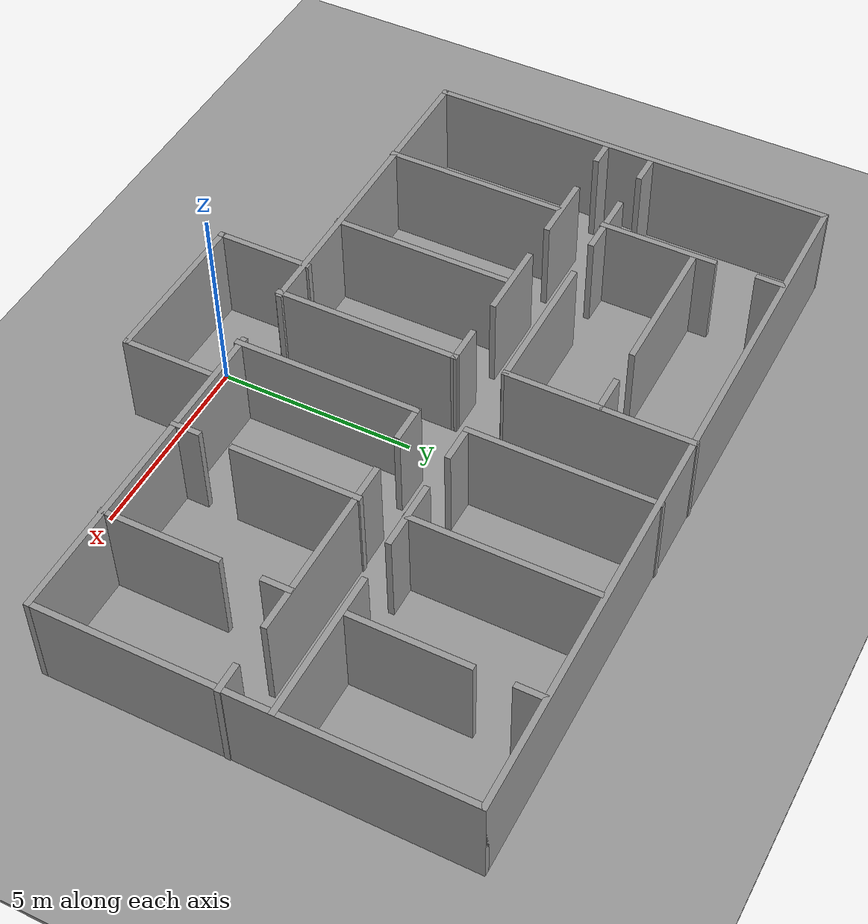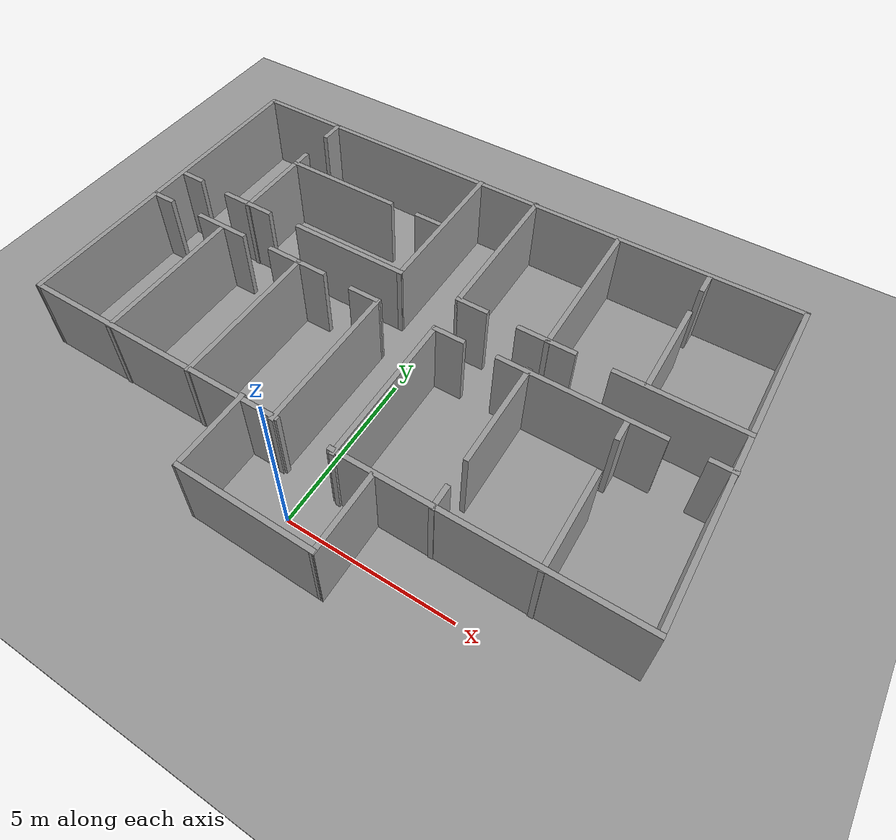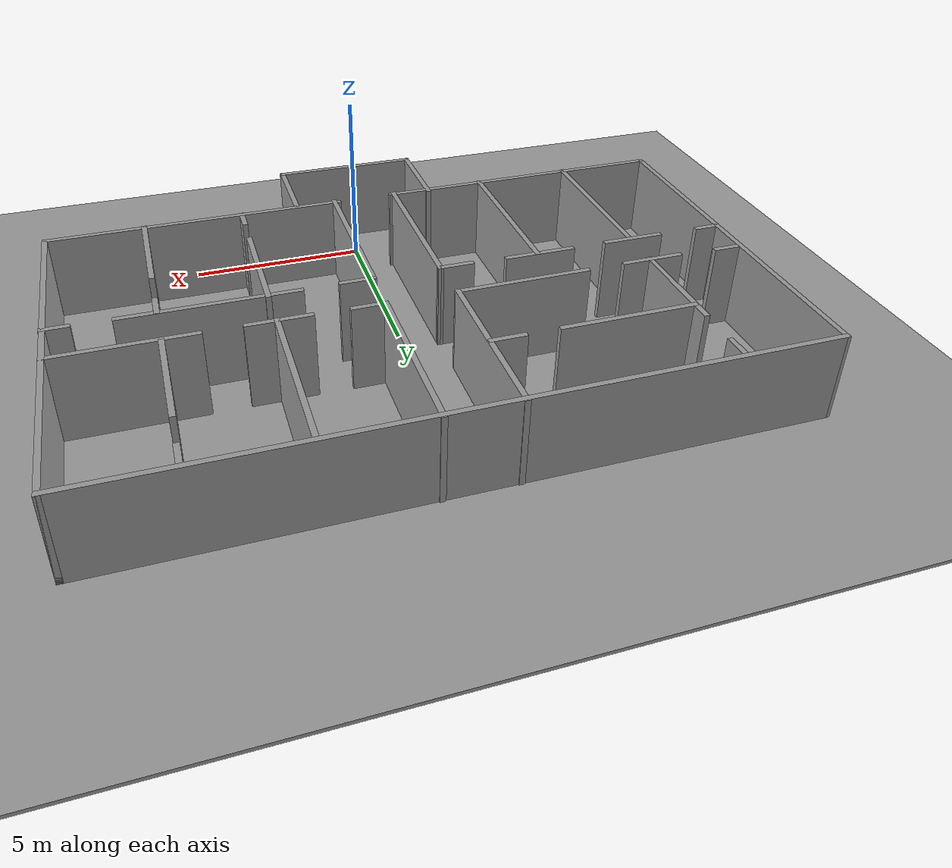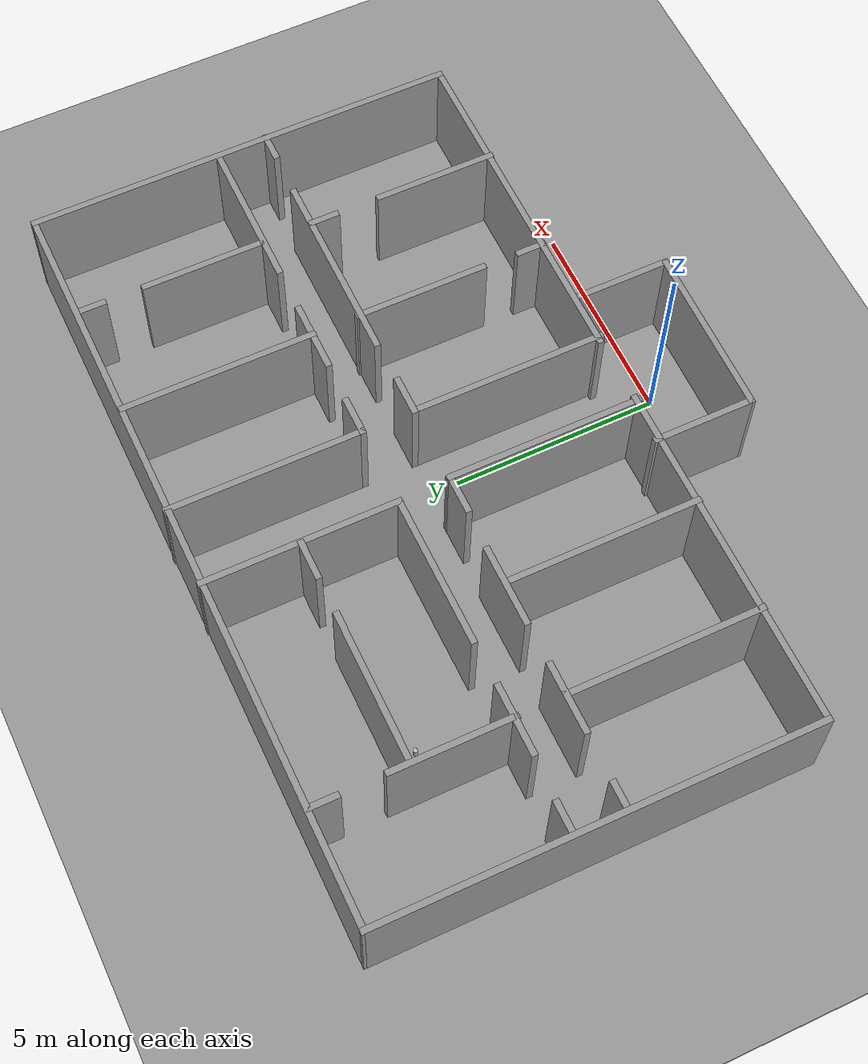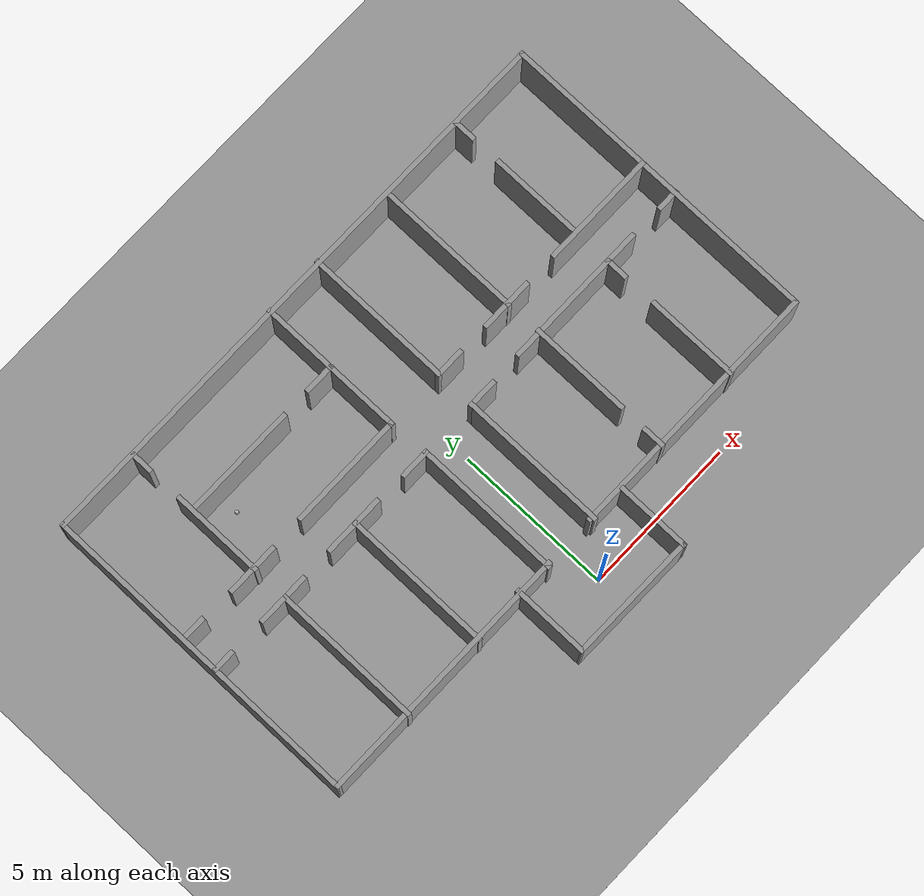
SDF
<sdf version="1.7">
 <world name="default">
  <light name="sun" type="directional">
   <pose>0 0 10 0 -0 0</pose>
   <diffuse>0.8 0.8 0.8 1</diffuse>
   <specular>0.2 0.2 0.2 1</specular>
   <attenuation>
    <range>1000</range>
    <constant>0.9</constant>
    <linear>0.01</linear>
    <quadratic>0.001</quadratic>
   </attenuation>
   <direction>-0.5 0.1 -0.9</direction>
   <spot><inner_angle>0</inner_angle><outer_angle>0</outer_angle><falloff>0</falloff></spot>
  </light>
  <model name="ground_plane">
   <static>1</static>
   <link name="link">
    <collision name="collision">
     <geometry><plane><normal>0 0 1</normal><size>100 100</size></plane></geometry>
     <surface>
      <contact><collide_bitmask>65535</collide_bitmask></contact>
      <friction><ode><mu>100</mu><mu2>50</mu2></ode></friction>
     </surface>
    </collision>
    <visual name="visual">
     <cast_shadows>0</cast_shadows>
     <geometry><plane><normal>0 0 1</normal><size>100 100</size></plane></geometry>
     <material>
      <script><uri>file://media/materials/scripts/gazebo.material</uri><name>Gazebo/Grey</name></script>
     </material>
    </visual>
   </link>
  </model>
  <gravity>0 0 -9.8</gravity>
  <magnetic_field>6e-06 2.3e-05 -4.2e-05</magnetic_field>
  <atmosphere type="adiabatic"/>
  <physics type="ode">
   <max_step_size>0.001</max_step_size>
   <real_time_factor>1</real_time_factor>
   <real_time_update_rate>1000</real_time_update_rate>
  </physics>
  <scene><ambient>0.4 0.4 0.4 1</ambient><background>0.7 0.7 0.7 1</background><shadows>1</shadows></scene>
  <spherical_coordinates>
   <surface_model>EARTH_WGS84</surface_model>
   <latitude_deg>0</latitude_deg>
   <longitude_deg>0</longitude_deg>
   <elevation>0</elevation>
   <heading_deg>0</heading_deg>
  </spherical_coordinates>
  <model name="wh">
   <pose>-0.081529 5.18809 0 0 -0 0</pose>
   <link name="Wall_0">
    <collision name="Wall_0_Collision">
     <geometry><box><size>18.5 0.15 2.5</size></box></geometry>
     <pose>0 0 1.25 0 -0 0</pose>
    </collision>
    <visual name="Wall_0_Visual">
     <pose>0 0 1.25 0 -0 0</pose>
     <geometry><box><size>18.5 0.15 2.5</size></box></geometry>
     <material>
      <script><uri>file://media/materials/scripts/gazebo.material</uri><name>Gazebo/Grey</name></script>
      <ambient>1 1 1 1</ambient>
     </material>
     <meta><layer>0</layer></meta>
    </visual>
    <pose>0.000563 6.32698 0 0 -0 0</pose>
   </link>
   <link name="Wall_1">
    <collision name="Wall_1_Collision">
     <geometry><box><size>10.5 0.15 2.5</size></box></geometry>
     <pose>0 0 1.25 0 -0 0</pose>
    </collision>
    <visual name="Wall_1_Visual">
     <pose>0 0 1.25 0 -0 0</pose>
     <geometry><box><size>10.5 0.15 2.5</size></box></geometry>
     <material>
      <script><uri>file://media/materials/scripts/gazebo.material</uri><name>Gazebo/Grey</name></script>
      <ambient>1 1 1 1</ambient>
     </material>
     <meta><layer>0</layer></meta>
    </visual>
    <pose>9.17556 1.15198 0 0 -0 -1.5708</pose>
   </link>
   <link name="Wall_14">
    <collision name="Wall_14_Collision">
     <geometry><box><size>1.01604 0.15 2.5</size></box></geometry>
     <pose>0 0 1.25 0 -0 0</pose>
    </collision>
    <visual name="Wall_14_Visual">
     <pose>0 0 1.25 0 -0 0</pose>
     <geometry><box><size>1.01604 0.15 2.5</size></box></geometry>
     <material>
      <script><uri>file://media/materials/scripts/gazebo.material</uri><name>Gazebo/Grey</name></script>
      <ambient>1 1 1 1</ambient>
     </material>
     <meta><layer>0</layer></meta>
    </visual>
    <pose>-1.33164 0.512268 0 0 -0 -3.13943</pose>
   </link>
   <link name="Wall_16">
    <collision name="Wall_16_Collision">
     <geometry><box><size>2 0.15 2.5</size></box></geometry>
     <pose>0 0 1.25 0 -0 0</pose>
    </collision>
    <visual name="Wall_16_Visual">
     <pose>0 0 1.25 0 -0 0</pose>
     <geometry><box><size>2 0.15 2.5</size></box></geometry>
     <material>
      <script><uri>file://media/materials/scripts/gazebo.material</uri><name>Gazebo/Grey</name></script>
      <ambient>1 1 1 1</ambient>
     </material>
     <meta><layer>0</layer></meta>
    </visual>
    <pose>-3.73243 0.555226 0 0 -0 3.14159</pose>
   </link>
   <link name="Wall_18">
    <collision name="Wall_18_Collision">
     <geometry><box><size>1.75 0.15 2.5</size></box></geometry>
     <pose>0 0 1.25 0 -0 0</pose>
    </collision>
    <visual name="Wall_18_Visual">
     <pose>0 0 1.25 0 -0 0</pose>
     <geometry><box><size>1.75 0.15 2.5</size></box></geometry>
     <material>
      <script><uri>file://media/materials/scripts/gazebo.material</uri><name>Gazebo/Grey</name></script>
      <ambient>1 1 1 1</ambient>
     </material>
     <meta><layer>0</layer></meta>
    </visual>
    <pose>-6.52726 0.5435 0 0 -0 3.14159</pose>
   </link>
   <link name="Wall_20">
    <collision name="Wall_20_Collision">
     <geometry><box><size>0.75 0.15 2.5</size></box></geometry>
     <pose>0 0 1.25 0 -0 0</pose>
    </collision>
    <visual name="Wall_20_Visual">
     <pose>0 0 1.25 0 -0 0</pose>
     <geometry><box><size>0.75 0.15 2.5</size></box></geometry>
     <material>
      <script><uri>file://media/materials/scripts/gazebo.material</uri><name>Gazebo/Grey</name></script>
      <ambient>1 1 1 1</ambient>
     </material>
     <meta><layer>0</layer></meta>
    </visual>
    <pose>-8.85525 0.555226 0 0 -0 3.14159</pose>
   </link>
   <link name="Wall_22">
    <collision name="Wall_22_Collision">
     <geometry><box><size>4.75 0.15 2.5</size></box></geometry>
     <pose>0 0 1.25 0 -0 0</pose>
    </collision>
    <visual name="Wall_22_Visual">
     <pose>0 0 1.25 0 -0 0</pose>
     <geometry><box><size>4.75 0.15 2.5</size></box></geometry>
     <material>
      <script><uri>file://media/materials/scripts/gazebo.material</uri><name>Gazebo/Grey</name></script>
      <ambient>1 1 1 1</ambient>
     </material>
     <meta><layer>0</layer></meta>
    </visual>
    <pose>-6.45314 -1.75978 0 0 -0 -1.5708</pose>
   </link>
   <link name="Wall_24">
    <collision name="Wall_24_Collision">
     <geometry><box><size>4.75 0.15 2.5</size></box></geometry>
     <pose>0 0 1.25 0 -0 0</pose>
    </collision>
    <visual name="Wall_24_Visual">
     <pose>0 0 1.25 0 -0 0</pose>
     <geometry><box><size>4.75 0.15 2.5</size></box></geometry>
     <material>
      <script><uri>file://media/materials/scripts/gazebo.material</uri><name>Gazebo/Grey</name></script>
      <ambient>1 1 1 1</ambient>
     </material>
     <meta><layer>0</layer></meta>
    </visual>
    <pose>-3.65318 -1.75978 0 0 -0 -1.5708</pose>
   </link>
   <link name="Wall_26">
    <collision name="Wall_26_Collision">
     <geometry><box><size>0.75 0.15 2.5</size></box></geometry>
     <pose>0 0 1.25 0 -0 0</pose>
    </collision>
    <visual name="Wall_26_Visual">
     <pose>0 0 1.25 0 -0 0</pose>
     <geometry><box><size>0.75 0.15 2.5</size></box></geometry>
     <material>
      <script><uri>file://media/materials/scripts/gazebo.material</uri><name>Gazebo/Grey</name></script>
      <ambient>1 1 1 1</ambient>
     </material>
     <meta><layer>0</layer></meta>
    </visual>
    <pose>-8.7394 1.77023 0 0 -0 3.14159</pose>
   </link>
   <link name="Wall_28">
    <collision name="Wall_28_Collision">
     <geometry><box><size>1.75 0.15 2.5</size></box></geometry>
     <pose>0 0 1.25 0 -0 0</pose>
    </collision>
    <visual name="Wall_28_Visual">
     <pose>0 0 1.25 0 -0 0</pose>
     <geometry><box><size>1.75 0.15 2.5</size></box></geometry>
     <material>
      <script><uri>file://media/materials/scripts/gazebo.material</uri><name>Gazebo/Grey</name></script>
      <ambient>1 1 1 1</ambient>
     </material>
     <meta><layer>0</layer></meta>
    </visual>
    <pose>-6.50729 1.72306 0 0 -0 0</pose>
   </link>
   <link name="Wall_30">
    <collision name="Wall_30_Collision">
     <geometry><box><size>3.75 0.15 2.5</size></box></geometry>
     <pose>0 0 1.25 0 -0 0</pose>
    </collision>
    <visual name="Wall_30_Visual">
     <pose>0 0 1.25 0 -0 0</pose>
     <geometry><box><size>3.75 0.15 2.5</size></box></geometry>
     <material>
      <script><uri>file://media/materials/scripts/gazebo.material</uri><name>Gazebo/Grey</name></script>
      <ambient>1 1 1 1</ambient>
     </material>
     <meta><layer>0</layer></meta>
    </visual>
    <pose>-2.77135 1.75339 0 0 -0 0.003746</pose>
   </link>
   <link name="Wall_32">
    <collision name="Wall_32_Collision">
     <geometry><box><size>4.75 0.15 2.5</size></box></geometry>
     <pose>0 0 1.25 0 -0 0</pose>
    </collision>
    <visual name="Wall_32_Visual">
     <pose>0 0 1.25 0 -0 0</pose>
     <geometry><box><size>4.75 0.15 2.5</size></box></geometry>
     <material>
      <script><uri>file://media/materials/scripts/gazebo.material</uri><name>Gazebo/Grey</name></script>
      <ambient>1 1 1 1</ambient>
     </material>
     <meta><layer>0</layer></meta>
    </visual>
    <pose>-0.971346 4.05339 0 0 -0 1.5708</pose>
   </link>
   <link name="Wall_34">
    <collision name="Wall_34_Collision">
     <geometry><box><size>0.75 0.15 2.5</size></box></geometry>
     <pose>0 0 1.25 0 -0 0</pose>
    </collision>
    <visual name="Wall_34_Visual">
     <pose>0 0 1.25 0 -0 0</pose>
     <geometry><box><size>0.75 0.15 2.5</size></box></geometry>
     <material>
      <script><uri>file://media/materials/scripts/gazebo.material</uri><name>Gazebo/Grey</name></script>
      <ambient>1 1 1 1</ambient>
     </material>
     <meta><layer>0</layer></meta>
    </visual>
    <pose>-6.45641 5.98604 0 0 -0 -1.5708</pose>
   </link>
   <link name="Wall_36">
    <collision name="Wall_36_Collision">
     <geometry><box><size>3 0.15 2.5</size></box></geometry>
     <pose>0 0 1.25 0 -0 0</pose>
    </collision>
    <visual name="Wall_36_Visual">
     <pose>0 0 1.25 0 -0 0</pose>
     <geometry><box><size>3 0.15 2.5</size></box></geometry>
     <material>
      <script><uri>file://media/materials/scripts/gazebo.material</uri><name>Gazebo/Grey</name></script>
      <ambient>1 1 1 1</ambient>
     </material>
     <meta><layer>0</layer></meta>
    </visual>
    <pose>-6.44851 3.11568 0 0 -0 -1.5708</pose>
   </link>
   <link name="Wall_38">
    <collision name="Wall_38_Collision">
     <geometry><box><size>3.75 0.15 2.5</size></box></geometry>
     <pose>0 0 1.25 0 -0 0</pose>
    </collision>
    <visual name="Wall_38_Visual">
     <pose>0 0 1.25 0 -0 0</pose>
     <geometry><box><size>3.75 0.15 2.5</size></box></geometry>
     <material>
      <script><uri>file://media/materials/scripts/gazebo.material</uri><name>Gazebo/Grey</name></script>
      <ambient>1 1 1 1</ambient>
     </material>
     <meta><layer>0</layer></meta>
    </visual>
    <pose>-4.64092 4.05503 0 0 -0 0</pose>
   </link>
   <link name="Wall_4">
    <collision name="Wall_4_Collision">
     <geometry><box><size>10.5109 0.15 2.5</size></box></geometry>
     <pose>0 0 1.25 0 -0 0</pose>
    </collision>
    <visual name="Wall_4_Visual">
     <pose>0 0 1.25 0 -0 0</pose>
     <geometry><box><size>10.5109 0.15 2.5</size></box></geometry>
     <material>
      <script><uri>file://media/materials/scripts/gazebo.material</uri><name>Gazebo/Grey</name></script>
      <ambient>1 1 1 1</ambient>
     </material>
     <meta><layer>0</layer></meta>
    </visual>
    <pose>-9.18375 1.14657 0 0 -0 1.569</pose>
   </link>
   <link name="Wall_40">
    <collision name="Wall_40_Collision">
     <geometry><box><size>1 0.15 2.5</size></box></geometry>
     <pose>0 0 1.25 0 -0 0</pose>
    </collision>
    <visual name="Wall_40_Visual">
     <pose>0 0 1.25 0 -0 0</pose>
     <geometry><box><size>1 0.15 2.5</size></box></geometry>
     <material>
      <script><uri>file://media/materials/scripts/gazebo.material</uri><name>Gazebo/Grey</name></script>
      <ambient>1 1 1 1</ambient>
     </material>
     <meta><layer>0</layer></meta>
    </visual>
    <pose>-1.42822 4.06041 0 0 -0 3.14159</pose>
   </link>
   <link name="Wall_43">
    <collision name="Wall_43_Collision">
     <geometry><box><size>4.75 0.15 2.5</size></box></geometry>
     <pose>0 0 1.25 0 -0 0</pose>
    </collision>
    <visual name="Wall_43_Visual">
     <pose>0 0 1.25 0 -0 0</pose>
     <geometry><box><size>4.75 0.15 2.5</size></box></geometry>
     <material>
      <script><uri>file://media/materials/scripts/gazebo.material</uri><name>Gazebo/Grey</name></script>
      <ambient>1 1 1 1</ambient>
     </material>
     <meta><layer>0</layer></meta>
    </visual>
    <pose>0.94023 4.0584 0 0 -0 1.5708</pose>
   </link>
   <link name="Wall_45">
    <collision name="Wall_45_Collision">
     <geometry><box><size>4.75 0.15 2.5</size></box></geometry>
     <pose>0 0 1.25 0 -0 0</pose>
    </collision>
    <visual name="Wall_45_Visual">
     <pose>0 0 1.25 0 -0 0</pose>
     <geometry><box><size>4.75 0.15 2.5</size></box></geometry>
     <material>
      <script><uri>file://media/materials/scripts/gazebo.material</uri><name>Gazebo/Grey</name></script>
      <ambient>1 1 1 1</ambient>
     </material>
     <meta><layer>0</layer></meta>
    </visual>
    <pose>3.68722 4.02622 0 0 -0 1.5708</pose>
   </link>
   <link name="Wall_47">
    <collision name="Wall_47_Collision">
     <geometry><box><size>1 0.15 2.5</size></box></geometry>
     <pose>0 0 1.25 0 -0 0</pose>
    </collision>
    <visual name="Wall_47_Visual">
     <pose>0 0 1.25 0 -0 0</pose>
     <geometry><box><size>1 0.15 2.5</size></box></geometry>
     <material>
      <script><uri>file://media/materials/scripts/gazebo.material</uri><name>Gazebo/Grey</name></script>
      <ambient>1 1 1 1</ambient>
     </material>
     <meta><layer>0</layer></meta>
    </visual>
    <pose>1.36034 0.511332 0 0 -0 0</pose>
   </link>
   <link name="Wall_49">
    <collision name="Wall_49_Collision">
     <geometry><box><size>4.75 0.15 2.5</size></box></geometry>
     <pose>0 0 1.25 0 -0 0</pose>
    </collision>
    <visual name="Wall_49_Visual">
     <pose>0 0 1.25 0 -0 0</pose>
     <geometry><box><size>4.75 0.15 2.5</size></box></geometry>
     <material>
      <script><uri>file://media/materials/scripts/gazebo.material</uri><name>Gazebo/Grey</name></script>
      <ambient>1 1 1 1</ambient>
     </material>
     <meta><layer>0</layer></meta>
    </visual>
    <pose>5.16248 0.541055 0 0 -0 0</pose>
   </link>
   <link name="Wall_51">
    <collision name="Wall_51_Collision">
     <geometry><box><size>0.75 0.15 2.5</size></box></geometry>
     <pose>0 0 1.25 0 -0 0</pose>
    </collision>
    <visual name="Wall_51_Visual">
     <pose>0 0 1.25 0 -0 0</pose>
     <geometry><box><size>0.75 0.15 2.5</size></box></geometry>
     <material>
      <script><uri>file://media/materials/scripts/gazebo.material</uri><name>Gazebo/Grey</name></script>
      <ambient>1 1 1 1</ambient>
     </material>
     <meta><layer>0</layer></meta>
    </visual>
    <pose>8.89319 0.517276 0 0 -0 0</pose>
   </link>
   <link name="Wall_53">
    <collision name="Wall_53_Collision">
     <geometry><box><size>3.25 0.15 2.5</size></box></geometry>
     <pose>0 0 1.25 0 -0 0</pose>
    </collision>
    <visual name="Wall_53_Visual">
     <pose>0 0 1.25 0 -0 0</pose>
     <geometry><box><size>3.25 0.15 2.5</size></box></geometry>
     <material>
      <script><uri>file://media/materials/scripts/gazebo.material</uri><name>Gazebo/Grey</name></script>
      <ambient>1 1 1 1</ambient>
     </material>
     <meta><layer>0</layer></meta>
    </visual>
    <pose>3.71202 -0.96966 0 0 -0 -1.5708</pose>
   </link>
   <link name="Wall_57">
    <collision name="Wall_57_Collision">
     <geometry><box><size>0.75 0.15 2.5</size></box></geometry>
     <pose>0 0 1.25 0 -0 0</pose>
    </collision>
    <visual name="Wall_57_Visual">
     <pose>0 0 1.25 0 -0 0</pose>
     <geometry><box><size>0.75 0.15 2.5</size></box></geometry>
     <material>
      <script><uri>file://media/materials/scripts/gazebo.material</uri><name>Gazebo/Grey</name></script>
      <ambient>1 1 1 1</ambient>
     </material>
     <meta><layer>0</layer></meta>
    </visual>
    <pose>3.7004 -3.74322 0 0 -0 -1.5708</pose>
   </link>
   <link name="Wall_59">
    <collision name="Wall_59_Collision">
     <geometry><box><size>3 0.15 2.5</size></box></geometry>
     <pose>0 0 1.25 0 -0 0</pose>
    </collision>
    <visual name="Wall_59_Visual">
     <pose>0 0 1.25 0 -0 0</pose>
     <geometry><box><size>3 0.15 2.5</size></box></geometry>
     <material>
      <script><uri>file://media/materials/scripts/gazebo.material</uri><name>Gazebo/Grey</name></script>
      <ambient>1 1 1 1</ambient>
     </material>
     <meta><layer>0</layer></meta>
    </visual>
    <pose>6.476 -2.62587 0 0 -0 -1.5708</pose>
   </link>
   <link name="Wall_6">
    <collision name="Wall_6_Collision">
     <geometry><box><size>8.5 0.15 2.5</size></box></geometry>
     <pose>0 0 1.25 0 -0 0</pose>
    </collision>
    <visual name="Wall_6_Visual">
     <pose>0 0 1.25 0 -0 0</pose>
     <geometry><box><size>8.5 0.15 2.5</size></box></geometry>
     <material>
      <script><uri>file://media/materials/scripts/gazebo.material</uri><name>Gazebo/Grey</name></script>
      <ambient>1 1 1 1</ambient>
     </material>
     <meta><layer>0</layer></meta>
    </visual>
    <pose>-5.00202 -4.03384 0 0 -0 0</pose>
   </link>
   <link name="Wall_61">
    <collision name="Wall_61_Collision">
     <geometry><box><size>0.75 0.15 2.5</size></box></geometry>
     <pose>0 0 1.25 0 -0 0</pose>
    </collision>
    <visual name="Wall_61_Visual">
     <pose>0 0 1.25 0 -0 0</pose>
     <geometry><box><size>0.75 0.15 2.5</size></box></geometry>
     <material>
      <script><uri>file://media/materials/scripts/gazebo.material</uri><name>Gazebo/Grey</name></script>
      <ambient>1 1 1 1</ambient>
     </material>
     <meta><layer>0</layer></meta>
    </visual>
    <pose>6.476 0.220302 0 0 -0 1.5708</pose>
   </link>
   <link name="Wall_63">
    <collision name="Wall_63_Collision">
     <geometry><box><size>1 0.15 2.5</size></box></geometry>
     <pose>0 0 1.25 0 -0 0</pose>
    </collision>
    <visual name="Wall_63_Visual">
     <pose>0 0 1.25 0 -0 0</pose>
     <geometry><box><size>1 0.15 2.5</size></box></geometry>
     <material>
      <script><uri>file://media/materials/scripts/gazebo.material</uri><name>Gazebo/Grey</name></script>
      <ambient>1 1 1 1</ambient>
     </material>
     <meta><layer>0</layer></meta>
    </visual>
    <pose>1.36523 1.7584 0 0 -0 0</pose>
   </link>
   <link name="Wall_65">
    <collision name="Wall_65_Collision">
     <geometry><box><size>1.75 0.15 2.5</size></box></geometry>
     <pose>0 0 1.25 0 -0 0</pose>
    </collision>
    <visual name="Wall_65_Visual">
     <pose>0 0 1.25 0 -0 0</pose>
     <geometry><box><size>1.75 0.15 2.5</size></box></geometry>
     <material>
      <script><uri>file://media/materials/scripts/gazebo.material</uri><name>Gazebo/Grey</name></script>
      <ambient>1 1 1 1</ambient>
     </material>
     <meta><layer>0</layer></meta>
    </visual>
    <pose>3.63901 1.73879 0 0 -0 0</pose>
   </link>
   <link name="Wall_67">
    <collision name="Wall_67_Collision">
     <geometry><box><size>3.75 0.15 2.5</size></box></geometry>
     <pose>0 0 1.25 0 -0 0</pose>
    </collision>
    <visual name="Wall_67_Visual">
     <pose>0 0 1.25 0 -0 0</pose>
     <geometry><box><size>3.75 0.15 2.5</size></box></geometry>
     <material>
      <script><uri>file://media/materials/scripts/gazebo.material</uri><name>Gazebo/Grey</name></script>
      <ambient>1 1 1 1</ambient>
     </material>
     <meta><layer>0</layer></meta>
    </visual>
    <pose>7.37359 1.73879 0 0 -0 0</pose>
   </link>
   <link name="Wall_69">
    <collision name="Wall_69_Collision">
     <geometry><box><size>0.75 0.15 2.5</size></box></geometry>
     <pose>0 0 1.25 0 -0 0</pose>
    </collision>
    <visual name="Wall_69_Visual">
     <pose>0 0 1.25 0 -0 0</pose>
     <geometry><box><size>0.75 0.15 2.5</size></box></geometry>
     <material>
      <script><uri>file://media/materials/scripts/gazebo.material</uri><name>Gazebo/Grey</name></script>
      <ambient>1 1 1 1</ambient>
     </material>
     <meta><layer>0</layer></meta>
    </visual>
    <pose>6.46274 5.9851 0 0 -0 1.5708</pose>
   </link>
   <link name="Wall_71">
    <collision name="Wall_71_Collision">
     <geometry><box><size>3 0.15 2.5</size></box></geometry>
     <pose>0 0 1.25 0 -0 0</pose>
    </collision>
    <visual name="Wall_71_Visual">
     <pose>0 0 1.25 0 -0 0</pose>
     <geometry><box><size>3 0.15 2.5</size></box></geometry>
     <material>
      <script><uri>file://media/materials/scripts/gazebo.material</uri><name>Gazebo/Grey</name></script>
      <ambient>1 1 1 1</ambient>
     </material>
     <meta><layer>0</layer></meta>
    </visual>
    <pose>6.46274 3.24515 0 0 -0 -1.5708</pose>
   </link>
   <link name="Wall_76">
    <collision name="Wall_76_Collision">
     <geometry><box><size>4.75 0.15 2.5</size></box></geometry>
     <pose>0 0 1.25 0 -0 0</pose>
    </collision>
    <visual name="Wall_76_Visual">
     <pose>0 0 1.25 0 -0 0</pose>
     <geometry><box><size>4.75 0.15 2.5</size></box></geometry>
     <material>
      <script><uri>file://media/materials/scripts/gazebo.material</uri><name>Gazebo/Grey</name></script>
      <ambient>1 1 1 1</ambient>
     </material>
     <meta><layer>0</layer></meta>
    </visual>
    <pose>-0.898627 -1.7868 0 0 -0 -1.5708</pose>
   </link>
   <link name="Wall_78">
    <collision name="Wall_78_Collision">
     <geometry><box><size>4.75 0.15 2.5</size></box></geometry>
     <pose>0 0 1.25 0 -0 0</pose>
    </collision>
    <visual name="Wall_78_Visual">
     <pose>0 0 1.25 0 -0 0</pose>
     <geometry><box><size>4.75 0.15 2.5</size></box></geometry>
     <material>
      <script><uri>file://media/materials/scripts/gazebo.material</uri><name>Gazebo/Grey</name></script>
      <ambient>1 1 1 1</ambient>
     </material>
     <meta><layer>0</layer></meta>
    </visual>
    <pose>0.93534 -1.78867 0 0 -0 -1.5708</pose>
   </link>
   <link name="Wall_8">
    <collision name="Wall_8_Collision">
     <geometry><box><size>8.5 0.15 2.5</size></box></geometry>
     <pose>0 0 1.25 0 -0 0</pose>
    </collision>
    <visual name="Wall_8_Visual">
     <pose>0 0 1.25 0 -0 0</pose>
     <geometry><box><size>8.5 0.15 2.5</size></box></geometry>
     <material>
      <script><uri>file://media/materials/scripts/gazebo.material</uri><name>Gazebo/Grey</name></script>
      <ambient>1 1 1 1</ambient>
     </material>
     <meta><layer>0</layer></meta>
    </visual>
    <pose>5.00056 -4.02302 0 0 -0 3.14159</pose>
   </link>
   <link name="Wall_80">
    <collision name="Wall_80_Collision">
     <geometry><box><size>2.5 0.15 2.5</size></box></geometry>
     <pose>0 0 1.25 0 -0 0</pose>
    </collision>
    <visual name="Wall_80_Visual">
     <pose>0 0 1.25 0 -0 0</pose>
     <geometry><box><size>2.5 0.15 2.5</size></box></geometry>
     <material>
      <script><uri>file://media/materials/scripts/gazebo.material</uri><name>Gazebo/Grey</name></script>
      <ambient>1 1 1 1</ambient>
     </material>
     <meta><layer>0</layer></meta>
    </visual>
    <pose>-1.96123 -5.14273 0 0 -0 -1.5708</pose>
   </link>
   <link name="Wall_81">
    <collision name="Wall_81_Collision">
     <geometry><box><size>4.15418 0.15 2.5</size></box></geometry>
     <pose>0 0 1.25 0 -0 0</pose>
    </collision>
    <visual name="Wall_81_Visual">
     <pose>0 0 1.25 0 -0 0</pose>
     <geometry><box><size>4.15418 0.15 2.5</size></box></geometry>
     <material>
      <script><uri>file://media/materials/scripts/gazebo.material</uri><name>Gazebo/Grey</name></script>
      <ambient>1 1 1 1</ambient>
     </material>
     <meta><layer>0</layer></meta>
    </visual>
    <pose>0.040762 -6.33769 0 0 -0 -0.009974</pose>
   </link>
   <link name="Wall_82">
    <collision name="Wall_82_Collision">
     <geometry><box><size>2.40042 0.15 2.5</size></box></geometry>
     <pose>0 0 1.25 0 -0 0</pose>
    </collision>
    <visual name="Wall_82_Visual">
     <pose>0 0 1.25 0 -0 0</pose>
     <geometry><box><size>2.40042 0.15 2.5</size></box></geometry>
     <material>
      <script><uri>file://media/materials/scripts/gazebo.material</uri><name>Gazebo/Grey</name></script>
      <ambient>1 1 1 1</ambient>
     </material>
     <meta><layer>0</layer></meta>
    </visual>
    <pose>2.07079 -5.2328 0 0 -0 1.5708</pose>
   </link>
   <static>1</static>
  </model>
  <model name="ground_plane_0">
   <static>1</static>
   <link name="link">
    <collision name="collision">
     <geometry><plane><normal>0 0 1</normal><size>100 100</size></plane></geometry>
     <surface>
      <contact><collide_bitmask>65535</collide_bitmask></contact>
      <friction><ode><mu>100</mu><mu2>50</mu2></ode></friction>
     </surface>
    </collision>
    <visual name="visual">
     <cast_shadows>0</cast_shadows>
     <geometry><plane><normal>0 0 1</normal><size>100 100</size></plane></geometry>
     <material>
      <script><uri>file://media/materials/scripts/gazebo.material</uri><name>Gazebo/Grey</name></script>
     </material>
    </visual>
   </link>
   <pose>-5.99381 9.90052 0 0 -0 0</pose>
  </model>
  <model name="beer">
   <link name="link">
    <pose>0 0 0.115 0 -0 0</pose>
    <inertial>
     <mass>0.39</mass>
     <inertia><ixx>0.00058</ixx><ixy>0</ixy><ixz>0</ixz><iyy>0.00058</iyy><iyz>0</iyz><izz>0.00019</izz></inertia>
    </inertial>
    <collision name="collision">
     <geometry><cylinder><radius>0.055</radius><length>0.23</length></cylinder></geometry>
    </collision>
    <visual name="visual">
     <geometry><cylinder><radius>0.055</radius><length>0.23</length></cylinder></geometry>
     <material>
      <script>
       <uri>https://fuel.ignitionrobotics.org/1.0/caguero/models/beer/2/files/materials/scripts</uri>
       <uri>https://fuel.ignitionrobotics.org/1.0/caguero/models/beer/2/files/materials/textures</uri>
       <name>Beer/Diffuse</name>
      </script>
     </material>
    </visual>
   </link>
   <pose>-5.54927 8.66503 -9e-06 -1e-06 -0 9e-06</pose>
  </model>
 </world>
</sdf>
